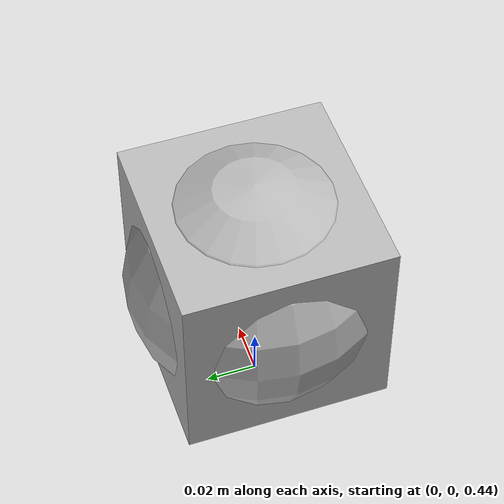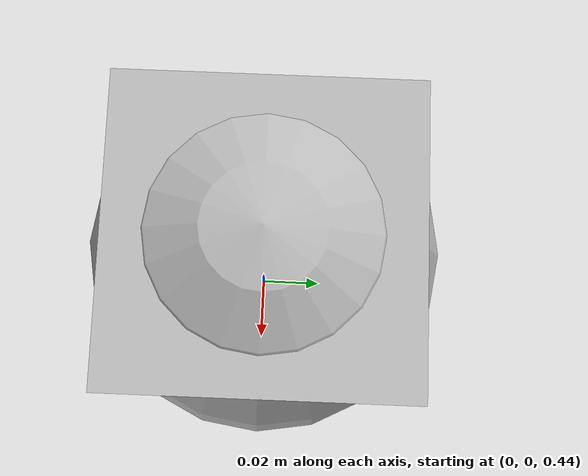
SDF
<?xml version="1.0" ?>
<sdf version="1.9">
  <world name="inter_model_ball_probe">
    <physics name="1ms" type="ignored">
      <max_step_size>0.001</max_step_size>
      <real_time_factor>1.0</real_time_factor>
    </physics>
    <plugin filename="gz-sim-physics-system" name="gz::sim::systems::Physics"/>
    <plugin filename="gz-sim-user-commands-system" name="gz::sim::systems::UserCommands"/>
    <plugin filename="gz-sim-scene-broadcaster-system" name="gz::sim::systems::SceneBroadcaster"/>
    <model name="model_a">
      <pose>0 0 0.5 0 0 0</pose>
      <link name="link">
        <inertial>
          <mass>1.0</mass>
          <inertia>
            <ixx>0.01</ixx>
            <ixy>0</ixy>
            <ixz>0</ixz>
            <iyy>0.01</iyy>
            <iyz>0</iyz>
            <izz>0.01</izz>
          </inertia>
        </inertial>
        <visual name="visual">
          <geometry>
            <sphere>
              <radius>0.05</radius>
            </sphere>
          </geometry>
        </visual>
      </link>
    </model>
    <model name="model_b">
      <pose>0 0 0.5 0 0 0</pose>
      <link name="link">
        <inertial>
          <mass>1.0</mass>
          <inertia>
            <ixx>0.01</ixx>
            <ixy>0</ixy>
            <ixz>0</ixz>
            <iyy>0.01</iyy>
            <iyz>0</iyz>
            <izz>0.01</izz>
          </inertia>
        </inertial>
        <visual name="visual">
          <geometry>
            <box>
              <size>0.08 0.08 0.08</size>
            </box>
          </geometry>
        </visual>
      </link>
    </model>
    <joint name="inter_model_ball_joint" type="ball">
      <pose>0 0 0.5 0 0 0</pose>
      <parent>model_a::link</parent>
      <child>model_b::link</child>
    </joint>
  </world>
</sdf>
